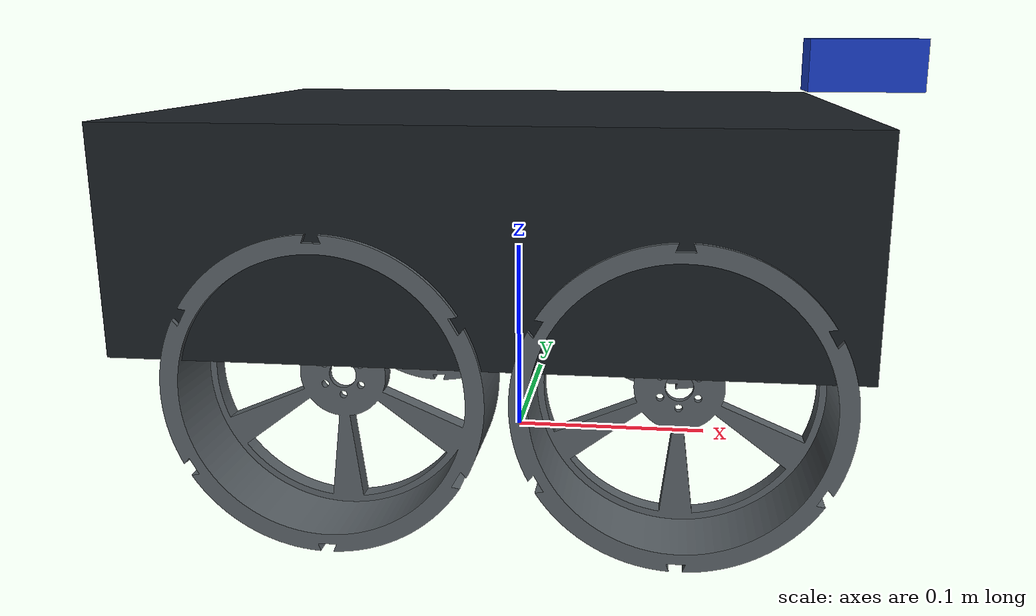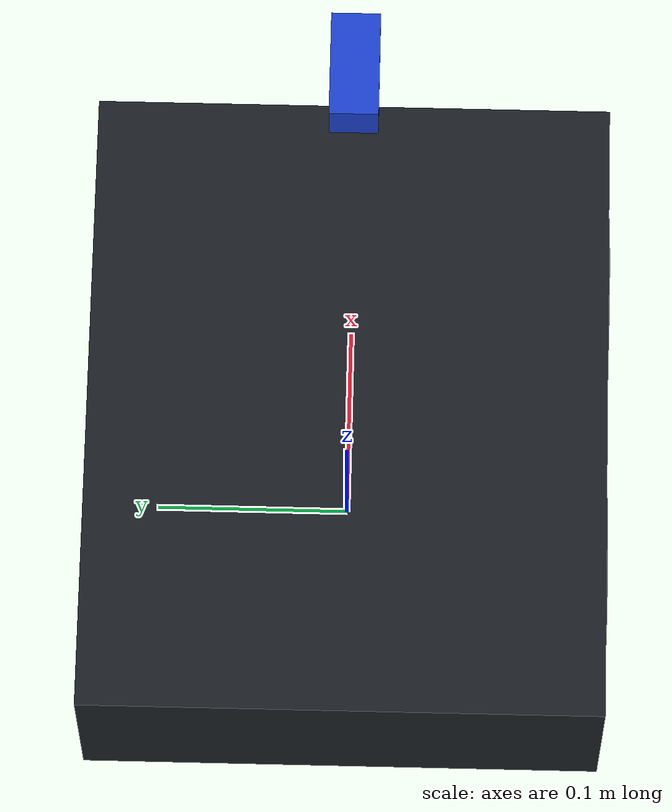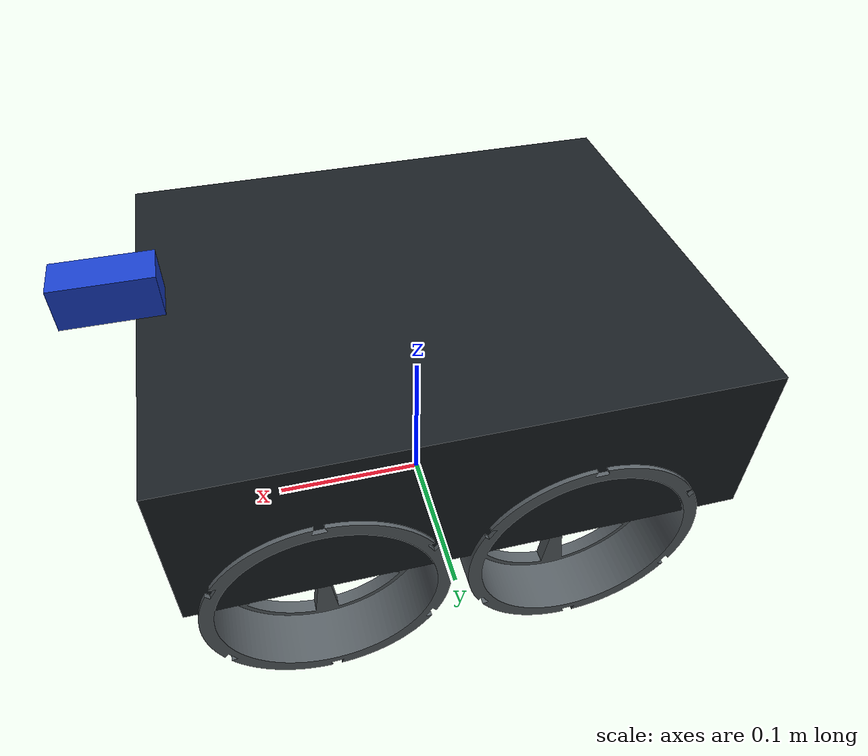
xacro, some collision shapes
<?xml version="1.0"?>
<robot name="space_rover" xmlns:xacro="http://ros.org/wiki/xacro">
  <xacro:arg name="use_rover_stl_visual" default="true"/>
  <xacro:arg name="rover_mesh_scale" default="0.001 0.001 0.001"/>
  <xacro:arg name="rover_mesh_xyz" default="0.00875 0 -0.09269867"/>
  <xacro:arg name="rover_mesh_rpy" default="0 0 3.14159265359"/>
  <xacro:property
    name="use_rover_stl_visual"
    value="$(arg use_rover_stl_visual)"/>
  <xacro:property name="rover_mesh_scale" value="$(arg rover_mesh_scale)"/>
  <xacro:property name="rover_mesh_xyz" value="$(arg rover_mesh_xyz)"/>
  <xacro:property name="rover_mesh_rpy" value="$(arg rover_mesh_rpy)"/>

  <xacro:property name="base_length" value="0.32"/>
  <xacro:property name="base_width" value="0.26"/>
  <xacro:property name="base_height" value="0.10"/>
  <xacro:property name="wheel_radius" value="0.060"/>
  <xacro:property name="wheel_width" value="0.040"/>
  <xacro:property name="front_wheel_x" value="0.08375"/>
  <xacro:property name="rear_wheel_x" value="-0.06625"/>
  <!-- Half the measured 225 mm track width, centre to centre. -->
  <xacro:property name="wheel_y" value="0.11250"/>
  <xacro:property name="wheel_z" value="-0.06400"/>

  <material name="chassis_dark"><color rgba="0.10 0.12 0.14 1.0"/></material>
  <material name="wheel_gray"><color rgba="0.35 0.38 0.40 1.0"/></material>
  <material name="camera_blue"><color rgba="0.10 0.25 0.80 1.0"/></material>

  <link name="base_footprint"/>

  <joint name="base_joint" type="fixed">
    <parent link="base_footprint"/>
    <child link="base_link"/>
    <origin xyz="0 0 ${wheel_radius - wheel_z}" rpy="0 0 0"/>
  </joint>

  <link name="base_link">
    <xacro:if value="${use_rover_stl_visual}">
      <visual name="rover_complete_stl_visual">
        <origin xyz="${rover_mesh_xyz}" rpy="${rover_mesh_rpy}"/>
        <geometry>
          <mesh
            filename="package://space_description/meshes/rover/rover_prototype.stl"
            scale="${rover_mesh_scale}"/>
        </geometry>
        <material name="chassis_dark"/>
      </visual>
    </xacro:if>
    <xacro:unless value="${use_rover_stl_visual}">
      <visual name="primitive_chassis_visual">
        <geometry><box size="${base_length} ${base_width} ${base_height}"/></geometry>
        <material name="chassis_dark"/>
      </visual>
    </xacro:unless>
    <collision>
      <geometry><box size="${base_length} ${base_width} ${base_height}"/></geometry>
    </collision>
    <inertial>
      <mass value="1.8"/>
      <origin xyz="0 0 0" rpy="0 0 0"/>
      <inertia ixx="0.018" ixy="0" ixz="0" iyy="0.022" iyz="0" izz="0.030"/>
    </inertial>
  </link>

  <xacro:macro name="wheel" params="prefix x y mesh_file">
    <link name="${prefix}_wheel">
      <xacro:if value="${use_rover_stl_visual}">
        <visual name="${prefix}_cad_wheel_visual">
          <!-- Centered wheel STL uses the same millimetre scale and -X-forward
               CAD orientation as the complete rover assembly. -->
          <origin xyz="0 0 0" rpy="0 0 3.14159265359"/>
          <geometry>
            <mesh
              filename="package://space_description/meshes/rover/${mesh_file}"
              scale="${rover_mesh_scale}"/>
          </geometry>
          <material name="wheel_gray"/>
        </visual>
      </xacro:if>
      <xacro:unless value="${use_rover_stl_visual}">
        <visual name="${prefix}_primitive_wheel_visual">
          <origin xyz="0 0 0" rpy="1.57079632679 0 0"/>
          <geometry><cylinder radius="${wheel_radius}" length="${wheel_width}"/></geometry>
          <material name="wheel_gray"/>
        </visual>
      </xacro:unless>
      <collision>
        <origin xyz="0 0 0" rpy="1.57079632679 0 0"/>
        <geometry><cylinder radius="${wheel_radius}" length="${wheel_width}"/></geometry>
      </collision>
      <inertial>
        <mass value="0.14"/>
        <origin xyz="0 0 0" rpy="0 0 0"/>
        <inertia ixx="0.00045" ixy="0" ixz="0" iyy="0.00045" iyz="0" izz="0.00045"/>
      </inertial>
    </link>
    <joint name="${prefix}_wheel_joint" type="continuous">
      <parent link="base_link"/>
      <child link="${prefix}_wheel"/>
      <origin xyz="${x} ${y} ${wheel_z}" rpy="0 0 0"/>
      <axis xyz="0 1 0"/>
    </joint>
  </xacro:macro>

  <xacro:wheel
    prefix="left_front"
    x="${front_wheel_x}"
    y="${wheel_y}"
    mesh_file="left_front_wheel.stl"/>
  <xacro:wheel
    prefix="left_rear"
    x="${rear_wheel_x}"
    y="${wheel_y}"
    mesh_file="left_rear_wheel.stl"/>
  <xacro:wheel
    prefix="right_front"
    x="${front_wheel_x}"
    y="-${wheel_y}"
    mesh_file="right_front_wheel.stl"/>
  <xacro:wheel
    prefix="right_rear"
    x="${rear_wheel_x}"
    y="-${wheel_y}"
    mesh_file="right_rear_wheel.stl"/>

  <link name="camera_link">
    <visual>
      <geometry><box size="0.055 0.025 0.025"/></geometry>
      <material name="camera_blue"/>
    </visual>
    <collision>
      <geometry><box size="0.055 0.025 0.025"/></geometry>
    </collision>
    <inertial>
      <mass value="0.08"/>
      <inertia ixx="0.00002" ixy="0" ixz="0" iyy="0.00002" iyz="0" izz="0.00002"/>
    </inertial>
  </link>

  <joint name="camera_joint" type="fixed">
    <parent link="base_link"/>
    <child link="camera_link"/>
    <origin xyz="0.17 0 0.07" rpy="0 0 0"/>
  </joint>

  <!-- REP-103 optical coordinates: Z forward, X right, Y down. -->
  <link name="camera_optical_frame"/>
  <joint name="camera_optical_joint" type="fixed">
    <parent link="camera_link"/>
    <child link="camera_optical_frame"/>
    <origin xyz="0 0 0" rpy="-1.57079632679 0 -1.57079632679"/>
  </joint>

  <link name="imu_link">
    <inertial>
      <mass value="0.01"/>
      <inertia ixx="0.000001" ixy="0" ixz="0" iyy="0.000001" iyz="0" izz="0.000001"/>
    </inertial>
  </link>

  <joint name="imu_joint" type="fixed">
    <parent link="base_link"/>
    <child link="imu_link"/>
    <origin xyz="0 0 0.03" rpy="0 0 0"/>
  </joint>
</robot>
